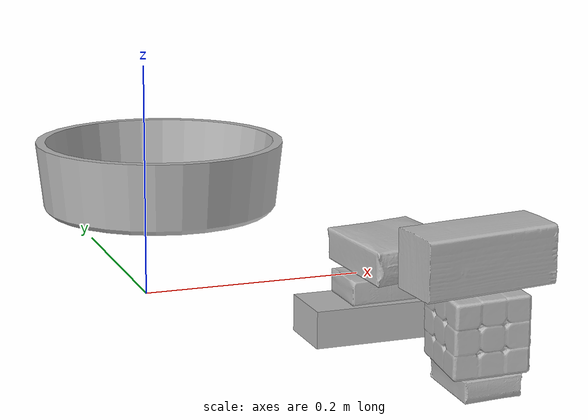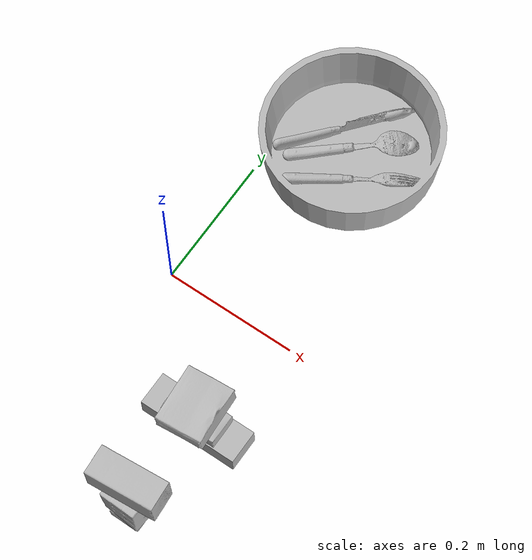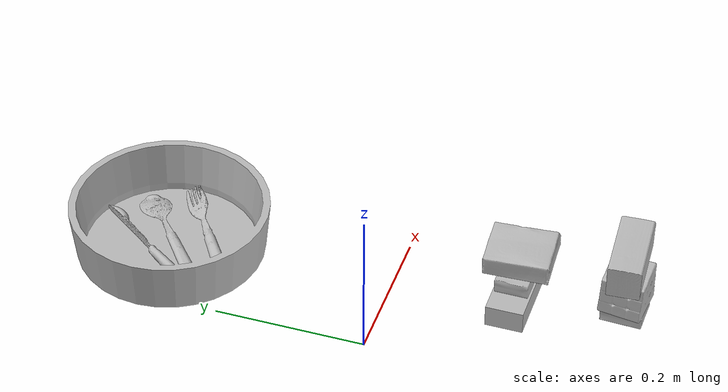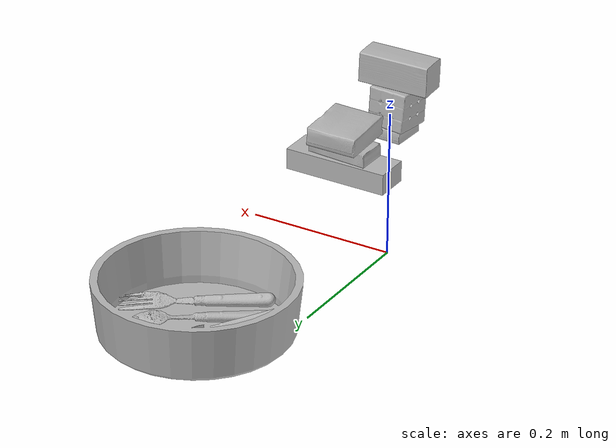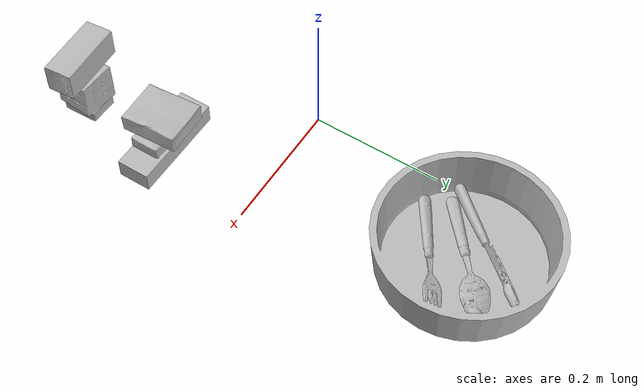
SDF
<?xml version="1.0" ?>
<sdf version="1.4">
  <world name="default">
    <light name="light1" type="point">
      <pose>0 0 1 0 0 0</pose>
      <diffuse>3 3 3 1</diffuse>
      <specular>3 3 3 1</specular>
    </light>
    <light name="light2" type="point">
      <pose>0 0.5 2 0 0 0</pose>
      <diffuse>1 1 1 1</diffuse>
      <specular>1 1 1 1</specular>
    </light>
    <light name="light3" type="point">
      <pose>0 0.5 2 0 0 0</pose>
      <diffuse>3 3 3 1</diffuse>
      <specular>3 3 3 1</specular>
    </light>
    <scene>
      <ambient>0.7 0.7 0.7</ambient>
    </scene>
    <model name="box11">
      <link name="link_box11">
        <collision name="default">
          <geometry>
            <mesh>
              <uri>model://jenga/collision_meshes/collision.obj</uri>
              <scale>1.0 1.0 1.0</scale>
            </mesh>
          </geometry>
          <surface>
            <friction>
              <ode>
                <mu>0.5</mu>
                <mu2>0.5</mu2>
              </ode>
            </friction>
          </surface>
        </collision>
        <visual name="default">
          <geometry>
            <mesh>
              <uri>model://jenga/visual_meshes/visual.dae</uri>
              <scale>1.0 1.0 1.0</scale>
            </mesh>
          </geometry>
        </visual>
        <inertial>
          <mass>0.22063912451267242</mass>
          <pose>-2.502855807051674e-07 -0.00010250011109746993 -4.0923405322246253e-05 0.0 -7.34215461761844e-07 0.0</pose>
          <inertia>
            <ixx>6.1056206e-05</ixx>
            <iyy>0.00041371517</iyy>
            <izz>0.00044167612</izz>
            <ixy>0</ixy>
            <ixz>0</ixz>
            <iyz>0</iyz>
          </inertia>
        </inertial>
      </link>
      <pose>0.16000059247016907 -0.15989769995212555 0.014999701641499996 1.566518062943381e-05 1.2345329153343824e-06 3.721310184596569e-07</pose>
    </model>
    <model name="box12">
      <link name="link_box12">
        <collision name="default">
          <geometry>
            <mesh>
              <uri>model://sugar_box/collision_meshes/collision.obj</uri>
              <scale>0.5 0.5 0.5</scale>
            </mesh>
          </geometry>
          <surface>
            <friction>
              <ode>
                <mu>0.5</mu>
                <mu2>0.5</mu2>
              </ode>
            </friction>
          </surface>
        </collision>
        <visual name="default">
          <geometry>
            <mesh>
              <uri>model://sugar_box/visual_meshes/visual.dae</uri>
              <scale>0.5 0.5 0.5</scale>
            </mesh>
          </geometry>
        </visual>
        <inertial>
          <mass>0.053318966180086136</mass>
          <pose>0.0005171863595023751 1.924554817378521e-05 -0.00018182402709499002 -0.00040462627129080113 0.001050663522124822 0.0026153787889376494</pose>
          <inertia>
            <ixx>1.1106302e-05</ixx>
            <iyy>3.5897858e-05</iyy>
            <izz>4.2974014e-05</izz>
            <ixy>0</ixy>
            <ixz>0</ixz>
            <iyz>0</iyz>
          </inertia>
        </inertial>
      </link>
      <pose>0.1596042513847351 -0.160340815782547 0.04139702394604683 0.00012734948448555897 -0.023177276591919777 -0.021110876324140375</pose>
    </model>
    <model name="box13">
      <link name="link_box13">
        <collision name="default">
          <geometry>
            <mesh>
              <uri>model://gelatin_box/collision_meshes/collision.obj</uri>
              <scale>1.0 1.0 1.0</scale>
            </mesh>
          </geometry>
          <surface>
            <friction>
              <ode>
                <mu>0.5</mu>
                <mu2>0.5</mu2>
              </ode>
            </friction>
          </surface>
        </collision>
        <visual name="default">
          <geometry>
            <mesh>
              <uri>model://gelatin_box/visual_meshes/visual.dae</uri>
              <scale>1.0 1.0 1.0</scale>
            </mesh>
          </geometry>
        </visual>
        <inertial>
          <mass>0.19111748039722443</mass>
          <pose>0.0004319618456065655 0.00011156871914863586 -0.00036403207923285663 -0.0010503719765995955 -0.004755818690324038 0.01644055947160125</pose>
          <inertia>
            <ixx>0.00013491335</ixx>
            <iyy>9.63679e-05</iyy>
            <izz>0.00020536821</izz>
            <ixy>0</ixy>
            <ixz>0</ixz>
            <iyz>0</iyz>
          </inertia>
        </inertial>
      </link>
      <pose>0.15898379683494568 -0.1605178266763687 0.06752065569162369 0.005638952138516875 -0.04509535119766963 0.05625883744821474</pose>
    </model>
    <model name="box21">
      <link name="link_box21">
        <collision name="default">
          <geometry>
            <mesh>
              <uri>model://pudding_box/collision_meshes/collision.obj</uri>
              <scale>0.5 0.5 0.5</scale>
            </mesh>
          </geometry>
          <surface>
            <friction>
              <ode>
                <mu>0.5</mu>
                <mu2>0.5</mu2>
              </ode>
            </friction>
          </surface>
        </collision>
        <visual name="default">
          <geometry>
            <mesh>
              <uri>model://pudding_box/visual_meshes/visual.dae</uri>
              <scale>0.5 0.5 0.5</scale>
            </mesh>
          </geometry>
        </visual>
        <inertial>
          <mass>0.037507444620132446</mass>
          <pose>0.00024474109522998333 0.0004033942532259971 -0.0002594413817860186 0.00521310221980129 -0.006603800139852783 0.020079832606434308</pose>
          <inertia>
            <ixx>1.0600058e-05</ixx>
            <iyy>7.131795e-06</iyy>
            <izz>1.5653754e-05</izz>
            <ixy>0</ixy>
            <ixz>0</ixz>
            <iyz>0</iyz>
          </inertia>
        </inertial>
      </link>
      <pose>0.15974470973014832 -0.3002588152885437 0.00986300129443407 0.022817521823894033 -0.011208011326945716 8.039556381395323e-05</pose>
    </model>
    <model name="box22">
      <link name="link_box22">
        <collision name="default">
          <geometry>
            <mesh>
              <uri>model://rubiks_cube/collision_meshes/collision.obj</uri>
              <scale>1.0 1.0 1.0</scale>
            </mesh>
          </geometry>
          <surface>
            <friction>
              <ode>
                <mu>0.5</mu>
                <mu2>0.5</mu2>
              </ode>
            </friction>
          </surface>
        </collision>
        <visual name="default">
          <geometry>
            <mesh>
              <uri>model://rubiks_cube/visual_meshes/visual.dae</uri>
              <scale>1.0 1.0 1.0</scale>
            </mesh>
          </geometry>
        </visual>
        <inertial>
          <mass>0.19412381947040558</mass>
          <pose>2.6721041649580002e-05 5.2569666877388954e-05 -7.264316082000732e-06 -0.05467327462967597 -0.09814157667114887 -0.034454893398498845</pose>
          <inertia>
            <ixx>0.000107266445</ixx>
            <iyy>0.0001067662</iyy>
            <izz>0.00010815532</izz>
            <ixy>0</ixy>
            <ixz>0</ixz>
            <iyz>0</iyz>
          </inertia>
        </inertial>
      </link>
      <pose>0.15860603749752045 -0.30150100588798523 0.04783225059509277 0.03369150546017436 -0.03729563401727142 -0.05816463561859057</pose>
    </model>
    <model name="box23">
      <link name="link_box23">
        <collision name="default">
          <geometry>
            <mesh>
              <uri>model://wood_block/collision_meshes/collision.obj</uri>
              <scale>0.5 0.5 0.5</scale>
            </mesh>
          </geometry>
          <surface>
            <friction>
              <ode>
                <mu>0.5</mu>
                <mu2>0.5</mu2>
              </ode>
            </friction>
          </surface>
        </collision>
        <visual name="default">
          <geometry>
            <mesh>
              <uri>model://wood_block/visual_meshes/visual.dae</uri>
              <scale>0.5 0.5 0.5</scale>
            </mesh>
          </geometry>
        </visual>
        <inertial>
          <mass>0.12021861970424652</mass>
          <pose>-2.9066577553749084e-06 -0.000285404734313488 0.00013204291462898254 -0.05220783851692058 -0.005192695246339916 -0.006861377900732038</pose>
          <inertia>
            <ixx>4.0217674e-05</ixx>
            <iyy>0.00012704768</iyy>
            <izz>0.00012657243</izz>
            <ixy>0</ixy>
            <ixz>0</ixz>
            <iyz>0</iyz>
          </inertia>
        </inertial>
      </link>
      <pose>0.15704168379306793 -0.3020530641078949 0.09947256743907928 0.01831351858266137 -0.02338204050676088 0.06948966405778806</pose>
    </model>
    <model name="plate1">
      <link name="link_plate1">
        <collision name="default">
          <geometry>
            <mesh>
              <uri>model://pan_tefal/collision_meshes/collision.obj</uri>
              <scale>1.0 1.0 1.0</scale>
            </mesh>
          </geometry>
          <surface>
            <friction>
              <ode>
                <mu>0.5</mu>
                <mu2>0.5</mu2>
              </ode>
            </friction>
          </surface>
        </collision>
        <visual name="default">
          <geometry>
            <mesh>
              <uri>model://pan_tefal/visual_meshes/visual.dae</uri>
              <scale>1.0 1.0 1.0</scale>
            </mesh>
          </geometry>
        </visual>
        <inertial>
          <mass>1.1174349784851074</mass>
          <pose>-0.0001800186582840979 3.278696021880023e-05 -0.00851493701338768 0.0008190242272949328 -0.00033013996347192336 -0.33186114310704434</pose>
          <inertia>
            <ixx>0.0077136005</ixx>
            <iyy>0.0077633304</iyy>
            <izz>0.014199255</izz>
            <ixy>0</ixy>
            <ixz>0</ixz>
            <iyz>0</iyz>
          </inertia>
        </inertial>
      </link>
      <pose>0.10000000894069672 0.30000007152557373 0.03805001080036163 -2.158048775616555e-08 -3.0267976851819767e-09 2.9795057121748573e-08</pose>
    </model>
    <model name="silverware1">
      <link name="link_silverware1">
        <collision name="default">
          <geometry>
            <mesh>
              <uri>model://spoon/collision_meshes/collision.obj</uri>
              <scale>1.0 1.0 1.0</scale>
            </mesh>
          </geometry>
          <surface>
            <friction>
              <ode>
                <mu>0.5</mu>
                <mu2>0.5</mu2>
              </ode>
            </friction>
          </surface>
        </collision>
        <visual name="default">
          <geometry>
            <mesh>
              <uri>model://spoon/visual_meshes/visual.dae</uri>
              <scale>1.0 1.0 1.0</scale>
            </mesh>
          </geometry>
        </visual>
        <inertial>
          <mass>0.03790392354130745</mass>
          <pose>-0.005526311695575714 -0.0016034170985221863 -0.0007271655485965312 0.03521845899657386 -0.039065840459698326 0.006150612465639116</pose>
          <inertia>
            <ixx>2.1082776e-06</ixx>
            <iyy>0.00014422317</iyy>
            <izz>0.00014526285</izz>
            <ixy>0</ixy>
            <ixz>0</ixz>
            <iyz>0</iyz>
          </inertia>
        </inertial>
      </link>
      <pose>0.101705402135849 0.29886454343795776 0.017686352133750916 3.106737729626869 -0.06191993895180424 0.6997452210037637</pose>
    </model>
    <model name="silverware2">
      <link name="link_silverware2">
        <collision name="default">
          <geometry>
            <mesh>
              <uri>model://fork/collision_meshes/collision.obj</uri>
              <scale>1.0 1.0 1.0</scale>
            </mesh>
          </geometry>
          <surface>
            <friction>
              <ode>
                <mu>0.5</mu>
                <mu2>0.5</mu2>
              </ode>
            </friction>
          </surface>
        </collision>
        <visual name="default">
          <geometry>
            <mesh>
              <uri>model://fork/visual_meshes/visual.dae</uri>
              <scale>1.0 1.0 1.0</scale>
            </mesh>
          </geometry>
        </visual>
        <inertial>
          <mass>0.029004188254475594</mass>
          <pose>-0.02957005612552166 0.0004658824182115495 0.00032188621116802096 -0.013551880215526314 -0.010977843078655252 0.014453906566097012</pose>
          <inertia>
            <ixx>1.0167608e-06</ixx>
            <iyy>7.572158e-05</iyy>
            <izz>7.617634e-05</izz>
            <ixy>0</ixy>
            <ixz>0</ixz>
            <iyz>0</iyz>
          </inertia>
        </inertial>
      </link>
      <pose>0.12619037926197052 0.2592778205871582 0.016714243218302727 2.735666030523587 -0.012612485805378625 0.5921092530400833</pose>
    </model>
    <model name="silverware3">
      <link name="link_silverware3">
        <collision name="default">
          <geometry>
            <mesh>
              <uri>model://knife/collision_meshes/collision.obj</uri>
              <scale>1.0 1.0 1.0</scale>
            </mesh>
          </geometry>
          <surface>
            <friction>
              <ode>
                <mu>0.5</mu>
                <mu2>0.5</mu2>
              </ode>
            </friction>
          </surface>
        </collision>
        <visual name="default">
          <geometry>
            <mesh>
              <uri>model://knife/visual_meshes/visual.dae</uri>
              <scale>1.0 1.0 1.0</scale>
            </mesh>
          </geometry>
        </visual>
        <inertial>
          <mass>0.015800314024090767</mass>
          <pose>-0.023785250261425972 0.0015275126788765192 5.0620288675418124e-05 0.07305498599936577 0.01724841842216061 -0.0074098211805850795</pose>
          <inertia>
            <ixx>4.48477e-07</ixx>
            <iyy>6.0702252e-05</iyy>
            <izz>6.0846694e-05</izz>
            <ixy>0</ixy>
            <ixz>0</ixz>
            <iyz>0</iyz>
          </inertia>
        </inertial>
      </link>
      <pose>0.07364057004451752 0.32139554619789124 0.020408619195222855 -1.8212356092489173 0.04836149854554461 0.9111787688124173</pose>
    </model>
  </world>
</sdf>
